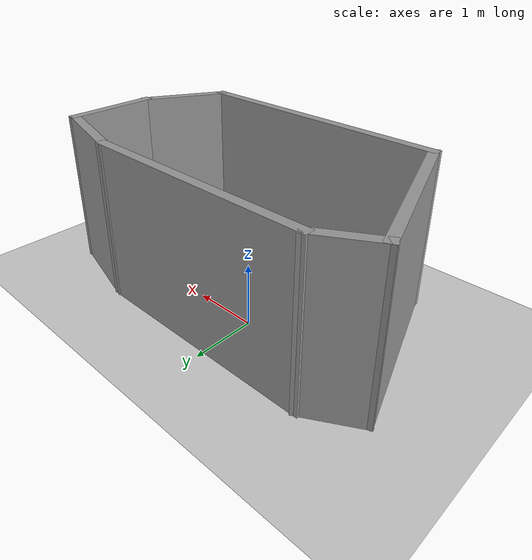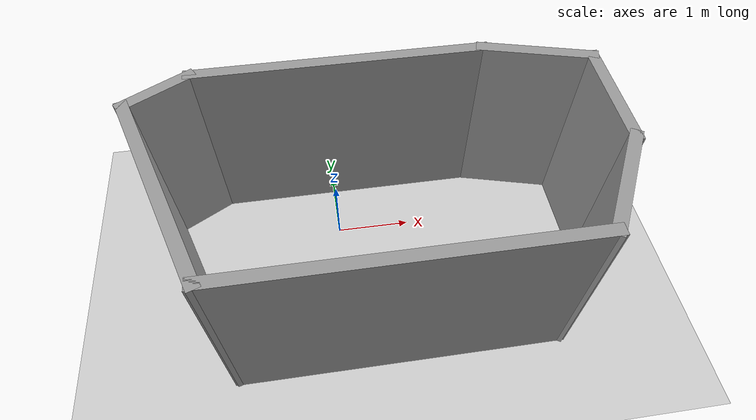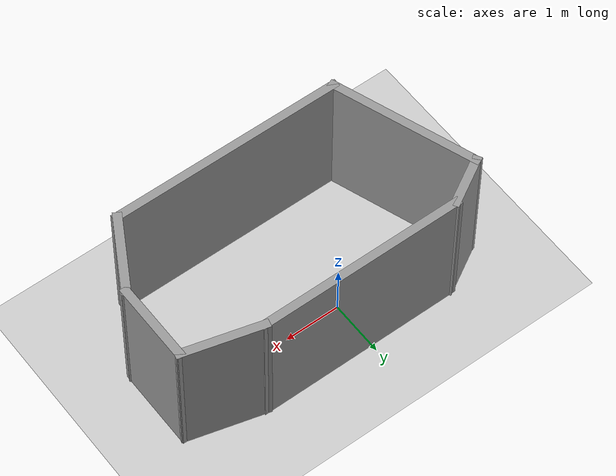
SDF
<sdf version='1.4'>
  <world name='default'>
    <!-- A global light source -->
    <include>
      <uri>model://sun</uri>
    </include>

    <!-- A ground plane -->
    <include>
      <uri>model://ground_plane</uri>
    </include>

    <physics type="ode">
      <real_time_update_rate>1000</real_time_update_rate>
      <max_step_size>0.001</max_step_size>
      <ode>
        <solver>
          <type>quick</type>
          <iters>150</iters>
          <precon_iters>0</precon_iters>
          <sor>1.400000</sor>
          <use_dynamic_moi_rescaling>1</use_dynamic_moi_rescaling>
        </solver>
        <constraints>
          <cfm>0.00001</cfm>
          <erp>0.2</erp>
          <contact_max_correcting_vel>2000.000000</contact_max_correcting_vel>
          <contact_surface_layer>0.01000</contact_surface_layer>
        </constraints>
      </ode>
    </physics>

    <!-- Load world -->
    <include>
      <uri>model://arena_one</uri>
    </include>

    <scene>
      <ambient>0.4 0.4 0.4 1</ambient>
      <background>0.7 0.7 0.7 1</background>
      <shadows>true</shadows>
    </scene>

    <gui fullscreen='0'>
      <camera name='user_camera'>
        <pose>0.8 0.0 12.0 0 1.5708 0</pose>
        <view_controller>orbit</view_controller>
      </camera>
    </gui>
  </world>
</sdf>

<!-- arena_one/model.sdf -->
<sdf version='1.6'>
  <model name='arena_one'>
    <pose frame=''>0.491057 -0.62491 0 0 -0 0</pose>
    <link name='Wall_0'>
      <collision name='Wall_0_Collision'>
        <geometry>
          <box>
            <size>4.25 0.15 2.5</size>
          </box>
        </geometry>
        <pose frame=''>0 0 1.25 0 -0 0</pose>
      </collision>
      <visual name='Wall_0_Visual'>
        <pose frame=''>0 0 1.25 0 -0 0</pose>
        <geometry>
          <box>
            <size>4.25 0.15 2.5</size>
          </box>
        </geometry>
        <material>
          <script>
            <uri>file://media/materials/scripts/gazebo.material</uri>
            <name>Gazebo/Grey</name>
          </script>
          <ambient>1 1 1 1</ambient>
        </material>
        <meta>
          <layer>0</layer>
        </meta>
      </visual>
      <pose frame=''>0.106598 -1.43437 0 0 -0 0</pose>
    </link>
    <link name='Wall_10'>
      <collision name='Wall_10_Collision'>
        <geometry>
          <box>
            <size>2.746 0.15 2.5</size>
          </box>
        </geometry>
        <pose frame=''>0 0 1.25 0 -0 0</pose>
      </collision>
      <visual name='Wall_10_Visual'>
        <pose frame=''>0 0 1.25 0 -0 0</pose>
        <geometry>
          <box>
            <size>2.746 0.15 2.5</size>
          </box>
        </geometry>
        <material>
          <script>
            <uri>file://media/materials/scripts/gazebo.material</uri>
            <name>Gazebo/Grey</name>
          </script>
          <ambient>1 1 1 1</ambient>
        </material>
        <meta>
          <layer>0</layer>
        </meta>
      </visual>
      <pose frame=''>-2.38168 -0.212602 0 0 -0 -1.22637</pose>
    </link>
    <link name='Wall_3'>
      <collision name='Wall_3_Collision'>
        <geometry>
          <box>
            <size>1.49432 0.15 2.5</size>
          </box>
        </geometry>
        <pose frame=''>0 0 1.25 0 -0 0</pose>
      </collision>
      <visual name='Wall_3_Visual'>
        <pose frame=''>0 0 1.25 0 -0 0</pose>
        <geometry>
          <box>
            <size>1.49432 0.15 2.5</size>
          </box>
        </geometry>
        <material>
          <script>
            <uri>file://media/materials/scripts/gazebo.material</uri>
            <name>Gazebo/Grey</name>
          </script>
          <ambient>1 1 1 1</ambient>
        </material>
        <meta>
          <layer>0</layer>
        </meta>
      </visual>
      <pose frame=''>2.48838 -0.849805 0 0 -0 1.05456</pose>
    </link>
    <link name='Wall_6'>
      <collision name='Wall_6_Collision'>
        <geometry>
          <box>
            <size>1.5 0.15 2.5</size>
          </box>
        </geometry>
        <pose frame=''>0 0 1.25 0 -0 0</pose>
      </collision>
      <visual name='Wall_6_Visual'>
        <pose frame=''>0 0 1.25 0 -0 0</pose>
        <geometry>
          <box>
            <size>1.5 0.15 2.5</size>
          </box>
        </geometry>
        <material>
          <script>
            <uri>file://media/materials/scripts/gazebo.material</uri>
            <name>Gazebo/Grey</name>
          </script>
          <ambient>1 1 1 1</ambient>
        </material>
        <meta>
          <layer>0</layer>
        </meta>
      </visual>
      <pose frame=''>2.82016 0.409762 0 0 -0 1.5708</pose>
    </link>
    <link name='Wall_7'>
      <collision name='Wall_7_Collision'>
        <geometry>
          <box>
            <size>1.5 0.15 2.5</size>
          </box>
        </geometry>
        <pose frame=''>0 0 1.25 0 -0 0</pose>
      </collision>
      <visual name='Wall_7_Visual'>
        <pose frame=''>0 0 1.25 0 -0 0</pose>
        <geometry>
          <box>
            <size>1.5 0.15 2.5</size>
          </box>
        </geometry>
        <material>
          <script>
            <uri>file://media/materials/scripts/gazebo.material</uri>
            <name>Gazebo/Grey</name>
          </script>
          <ambient>1 1 1 1</ambient>
        </material>
        <meta>
          <layer>0</layer>
        </meta>
      </visual>
      <pose frame=''>2.16816 1.25947 0 0 -0 2.87979</pose>
    </link>
    <link name='Wall_8'>
      <collision name='Wall_8_Collision'>
        <geometry>
          <box>
            <size>3.75 0.15 2.5</size>
          </box>
        </geometry>
        <pose frame=''>0 0 1.25 0 -0 0</pose>
      </collision>
      <visual name='Wall_8_Visual'>
        <pose frame=''>0 0 1.25 0 -0 0</pose>
        <geometry>
          <box>
            <size>3.75 0.15 2.5</size>
          </box>
        </geometry>
        <material>
          <script>
            <uri>file://media/materials/scripts/gazebo.material</uri>
            <name>Gazebo/Grey</name>
          </script>
          <ambient>1 1 1 1</ambient>
        </material>
        <meta>
          <layer>0</layer>
        </meta>
      </visual>
      <pose frame=''>-0.283836 1.43417 0 0 -0 3.14159</pose>
    </link>
    <link name='Wall_9'>
      <collision name='Wall_9_Collision'>
        <geometry>
          <box>
            <size>1 0.15 2.5</size>
          </box>
        </geometry>
        <pose frame=''>0 0 1.25 0 -0 0</pose>
      </collision>
      <visual name='Wall_9_Visual'>
        <pose frame=''>0 0 1.25 0 -0 0</pose>
        <geometry>
          <box>
            <size>1 0.15 2.5</size>
          </box>
        </geometry>
        <material>
          <script>
            <uri>file://media/materials/scripts/gazebo.material</uri>
            <name>Gazebo/Grey</name>
          </script>
          <ambient>1 1 1 1</ambient>
        </material>
        <meta>
          <layer>0</layer>
        </meta>
      </visual>
      <pose frame=''>-2.4519 1.22167 0 0 -0 -2.61799</pose>
    </link>
    <static>1</static>
  </model>
</sdf>
